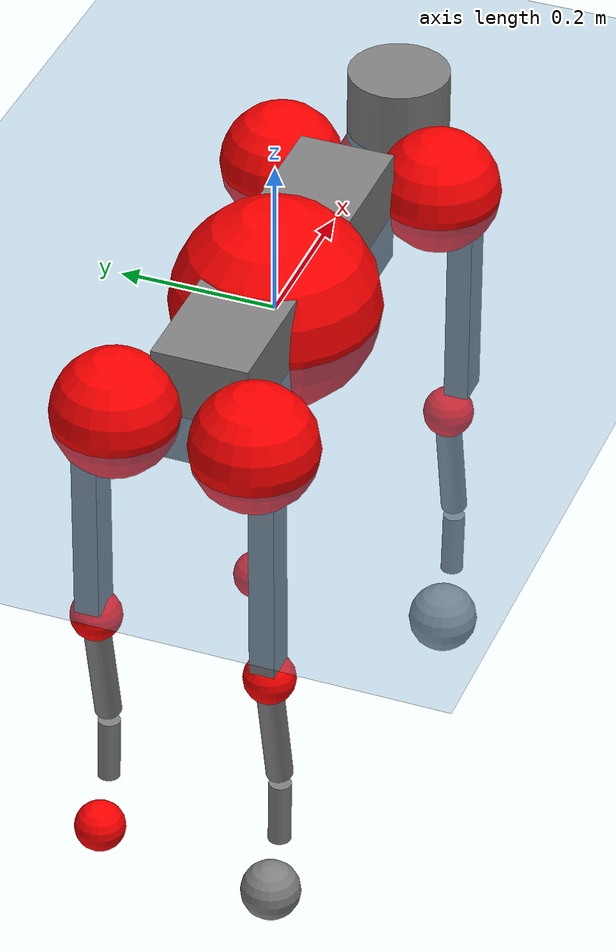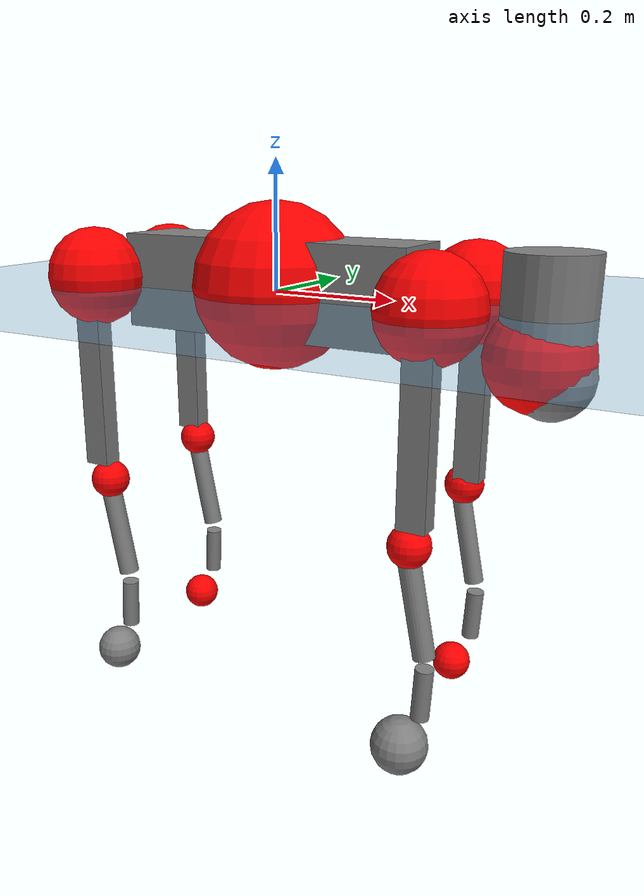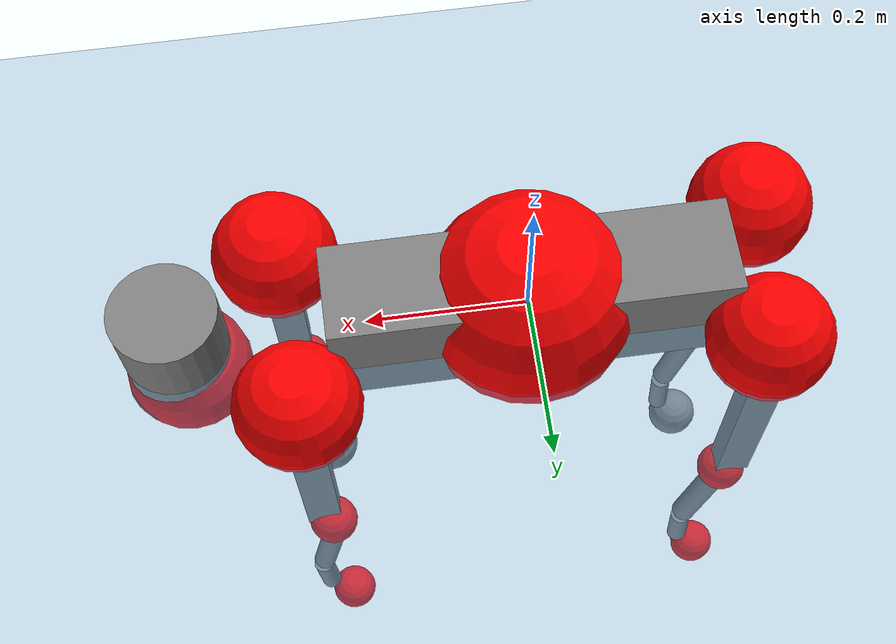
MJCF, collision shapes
<mujoco model="go2">
  <compiler angle="radian" assetdir="assets" balanceinertia="true" inertiafromgeom="false"/>

  <option timestep="0.005" density="1.2" viscosity="2e-05"/>

  <size nkey="1"/>

  <visual>
    <quality shadowsize="8192"/>
    <map shadowclip="0.5"/>
  </visual>

  <default>
    <default class="/">
      <geom contype="0" conaffinity="0" group="1" solref="-1000 -80"/>
      <site size="0.01 0.005 0.005" group="5"/>
      <general forcelimited="true" biastype="affine" gainprm="20" biasprm="0 -20 -0.5"/>
      <default class="go2">
        <joint armature="0.01" damping="0.01" frictionloss="0.2"/>
        <geom condim="1" margin="0.001"/>
        <default class="visual">
          <geom type="mesh" group="2"/>
        </default>
        <default class="collision">
          <geom group="3"/>
          <default class="foot">
            <geom size="0.022 0 0" condim="6" priority="1" friction="0.8 0.02 0.01" solimp="0.015 1 0.022"/>
          </default>
        </default>
        <default class="reward_collision_sphere">
          <geom group="5" rgba="1 0 0 1"/>
        </default>
      </default>
    </default>
  </default>

  <asset>
    <texture type="skybox" colorspace="auto" name="//unnamed_texture_0" builtin="gradient" rgb1="0.95 0.95 0.95" rgb2="0.95 0.95 0.95" width="100" height="600"/>
    <texture type="2d" colorspace="auto" name="texplane" builtin="checker" rgb1="0.345 0.575 0.748" rgb2="0.345 0.575 0.748" markrgb="1 1 1" width="512" height="512"/>
    <material name="MatPlane" class="/" texture="texplane" texuniform="true" texrepeat="2 2" specular="0.9"/>
    <material name="metal" class="/" rgba="0.9 0.95 0.95 1"/>
    <material name="black" class="/" rgba="0 0 0 1"/>
    <material name="white" class="/"/>
    <material name="gray" class="/" rgba="0.671705 0.692426 0.77427 1"/>
    <mesh name="base_0" class="/" file="base_0.obj"/>
    <mesh name="base_1" class="/" file="base_1.obj"/>
    <mesh name="base_2" class="/" file="base_2.obj"/>
    <mesh name="base_3" class="/" file="base_3.obj"/>
    <mesh name="base_4" class="/" file="base_4.obj"/>
    <mesh name="hip_0" class="/" file="hip_0.obj"/>
    <mesh name="hip_1" class="/" file="hip_1.obj"/>
    <mesh name="thigh_0" class="/" file="thigh_0.obj"/>
    <mesh name="thigh_1" class="/" file="thigh_1.obj"/>
    <mesh name="thigh_mirror_0" class="/" file="thigh_mirror_0.obj"/>
    <mesh name="thigh_mirror_1" class="/" file="thigh_mirror_1.obj"/>
    <mesh name="calf_0" class="/" file="calf_0.obj"/>
    <mesh name="calf_1" class="/" file="calf_1.obj"/>
    <mesh name="calf_mirror_0" class="/" file="calf_mirror_0.obj"/>
    <mesh name="calf_mirror_1" class="/" file="calf_mirror_1.obj"/>
    <mesh name="foot" class="/" file="foot.obj"/>
  </asset>

  <worldbody>
    <geom name="floor" class="/" size="100 100 0.125" type="plane" group="0" material="MatPlane"/>
    <light name="toplight_shadow" class="/" pos="0 0 5" dir="0.0990148 0.0990148 -0.990148" type="directional" ambient="0.04 0.04 0.04" diffuse="0.55 0.55 0.55" specular="0.12 0.12 0.12"/>
    <light name="toplight_fill" class="/" pos="0 0 5" dir="0.0990148 0.0990148 -0.990148" type="directional" castshadow="false" ambient="0.04 0.04 0.04" diffuse="0.3 0.3 0.3" specular="0.08 0.08 0.08"/>
    <body name="trunk" childclass="go2" pos="-0.000682776 -0.00118134 0.00899016" quat="1 1.52594e-05 0.000505902 0.000187583">
      <inertial pos="0.0420027 0.0117768 -0.0141189" quat="-0.0118167 0.700974 -0.0122669 0.712983" mass="15.501" diaginertia="0.663874 0.037364 0.196926"/>
      <joint name="//unnamed_joint_0" type="free" armature="0" damping="0" frictionloss="0"/>
      <geom name="//unnamed_geom_1" class="visual" material="black" mesh="base_0"/>
      <geom name="//unnamed_geom_2" class="visual" material="black" mesh="base_1"/>
      <geom name="//unnamed_geom_3" class="visual" material="black" mesh="base_2"/>
      <geom name="//unnamed_geom_4" class="visual" material="white" mesh="base_3"/>
      <geom name="//unnamed_geom_5" class="visual" material="gray" mesh="base_4"/>
      <geom name="trunk_1" class="collision" size="0.246139 0.061175 0.0745877" type="box"/>
      <geom name="trunk_2" class="collision" size="0.0654278 0.058885" pos="0.430647 0 0.0156356" type="cylinder"/>
      <geom name="trunk_3" class="collision" size="0.0615021" pos="0.442735 0 -0.0938135"/>
      <geom name="//unnamed_geom_9" class="reward_collision_sphere" size="0.130856"/>
      <geom name="//unnamed_geom_10" class="reward_collision_sphere" size="0.0785134" pos="0.423092 0 -0.0703601"/>
      <site name="imu" pos="0.0305373 0.00780218 0.00790691" size="0.0130856"/>
      <camera name="track" pos="0 -1.70214 0" quat="0.707107 0.707107 0 0" mode="trackcom"/>
      <camera name="ego_camera" pos="0.471445 0 0.0703601" quat="-0.5 -0.5 0.5 0.5"/>
      <body name="FL_hip" pos="0.290687 0.0445625 -0.000951137" quat="0.999995 -0.00280456 -0.00159516 -0.000742368">
        <inertial pos="-0.0200449 0.00825703 -0.000137926" quat="0.518826 0.501681 0.511037 0.46688" mass="1.74369" diaginertia="0.0080279 0.000261625 0.00422265"/>
        <joint name="FL_hip_joint" pos="0 0 0" axis="0.998827 -0.0403464 -0.0267856" stiffness="0.0189947" range="-1.04329 0.901741" armature="0.00466246" damping="0.0696026" frictionloss="0.291317"/>
        <geom name="//unnamed_geom_11" class="visual" material="metal" mesh="hip_0"/>
        <geom name="//unnamed_geom_12" class="visual" material="gray" mesh="hip_1"/>
        <geom name="//unnamed_geom_13" class="collision" size="0.0601936 0.0261711" pos="0 0.0680854 0" quat="0.707107 0.707107 0 0" type="cylinder"/>
        <geom name="//unnamed_geom_14" class="reward_collision_sphere" size="0.0785134" pos="0 0.0595748 0"/>
        <body name="FL_thigh" pos="-0.000640583 0.081457 -0.00063311" quat="1 2.4787e-05 -2.56194e-05 -6.78379e-05">
          <inertial pos="-0.0112134 -0.0176762 -0.0633129" quat="0.825452 0.10259 -0.0203128 0.5547" mass="2.3183" diaginertia="0.0538794 0.00258835 0.00841175"/>
          <joint name="FL_thigh_joint" pos="0 0 0" axis="-0.059597 0.997727 0.0314452" range="-1.50429 3.44472" armature="0.0118619" damping="0.0277437" frictionloss="0.414183"/>
          <geom name="//unnamed_geom_15" class="visual" material="metal" mesh="thigh_0"/>
          <geom name="//unnamed_geom_16" class="visual" material="gray" mesh="thigh_1"/>
          <geom name="//unnamed_geom_17" class="collision" size="0.139361 0.0160298 0.0222454" pos="0 0 -0.166519" quat="0.707107 0 0.707107 0" type="box"/>
          <body name="FL_calf" pos="-0.0105419 0.0108695 -0.319208" quat="0.999986 -3.50928e-05 0.00135208 -0.00509307">
            <inertial pos="0.0126232 0.000207549 -0.217821" quat="0.702329 -0.00603192 -0.01452 0.711679" mass="0.586998" diaginertia="0.012792 0.000654945 0.000559973"/>
            <joint name="FL_calf_joint" pos="0 0 0" axis="-0.00412875 0.997293 -0.0734095" stiffness="0.000256813" range="-2.55144 -0.942165" armature="0.00900212" damping="0.0611626" frictionloss="0.154555"/>
            <geom name="//unnamed_geom_18" class="visual" material="gray" mesh="calf_0"/>
            <geom name="//unnamed_geom_19" class="visual" material="black" mesh="calf_1"/>
            <geom name="FL_calf0" class="collision" size="0.0157027 0.0785134" pos="0.0120883 0 -0.0938135" quat="0.994493 0 -0.104807 0" type="cylinder"/>
            <geom name="//unnamed_geom_21" class="collision" size="0.0143941 0.0425281" pos="0.0302208 0 -0.231407" quat="0.999688 0 0.0249974 0" type="cylinder"/>
            <geom name="//unnamed_geom_22" class="visual" pos="0 0 -0.333038" quat="1 0 0 0" material="black" mesh="foot"/>
            <geom name="FL_foot" class="foot" size="0.0291689" pos="-0.00302208 0 -0.333038"/>
            <geom name="//unnamed_geom_24" class="reward_collision_sphere" size="0.0327139"/>
            <geom name="//unnamed_geom_25" class="reward_collision_sphere" size="0.0327139" pos="-0.00302208 0 -0.333038"/>
            <site name="FL_foot" class="foot" pos="-0.00302208 0 -0.333038" size="0.0130856"/>
          </body>
        </body>
      </body>
      <body name="FR_hip" pos="0.300598 -0.0416246 0.000459354" quat="1 -3.78953e-05 4.17681e-05 -9.4178e-06">
        <inertial pos="-0.0196698 -0.000554565 -0.000657171" quat="0.495659 0.508891 0.500308 0.49502" mass="1.42231" diaginertia="0.00672257 0.000217054 0.00407747"/>
        <joint name="FR_hip_joint" pos="0 0 0" axis="0.999681 0.0213519 0.0135086" stiffness="0.0226759" range="-0.805403 1.0095" armature="0.0201722" damping="0.000476839" frictionloss="0.415895"/>
        <geom name="//unnamed_geom_26" class="visual" pos="0 -6.20692e-09 -2.66228e-07" quat="4.63268e-05 1 0 0" material="metal" mesh="hip_0"/>
        <geom name="//unnamed_geom_27" class="visual" pos="0 -1.00622e-08 6.58483e-07" quat="4.63268e-05 1 0 0" material="gray" mesh="hip_1"/>
        <geom name="//unnamed_geom_28" class="collision" size="0.0601936 0.0261711" pos="0 -0.0680854 0" quat="0.707107 0.707107 0 0" type="cylinder"/>
        <geom name="//unnamed_geom_29" class="reward_collision_sphere" size="0.0785134" pos="0 -0.0595748 0"/>
        <body name="FR_thigh" pos="0.0058804 -0.0939235 0.00662708" quat="0.999999 0.000285623 -0.000921456 -0.00093048">
          <inertial pos="-0.00517358 0.017209 -0.0505505" quat="0.521339 -0.061713 0.102547 0.844915" mass="3.36322" diaginertia="0.0521768 0.00262999 0.00851254"/>
          <joint name="FR_thigh_joint" pos="0 0 0" axis="0.0364428 -0.998736 -0.0346036" stiffness="0.0261819" range="-3.76348 1.39932" armature="0.0120164" damping="0.0596477" frictionloss="0.067365"/>
          <geom name="//unnamed_geom_30" class="visual" material="metal" mesh="thigh_mirror_0"/>
          <geom name="//unnamed_geom_31" class="visual" material="gray" mesh="thigh_mirror_1"/>
          <geom name="//unnamed_geom_32" class="collision" size="0.139361 0.0160298 0.0222454" pos="0 0 -0.166519" quat="0.707107 0 0.707107 0" type="box"/>
          <body name="FR_calf" pos="-0.0116377 0.0125843 -0.338516" quat="1 -0.000150534 4.19394e-05 0.000175653">
            <inertial pos="0.00824281 0.0005319 -0.233614" quat="0.682879 -0.00353627 -0.0234025 0.730148" mass="0.545833" diaginertia="0.0135491 0.000729122 0.000490117"/>
            <joint name="FR_calf_joint" pos="0 0 0" axis="0.0137843 -0.999895 -0.0043671" range="0.99189 2.55805" armature="0.0158745" damping="0.00493591" frictionloss="0.434551"/>
            <geom name="//unnamed_geom_33" class="visual" material="gray" mesh="calf_mirror_0"/>
            <geom name="//unnamed_geom_34" class="visual" material="black" mesh="calf_mirror_1"/>
            <geom name="FR_calf0" class="collision" size="0.0170112 0.0785134" pos="0.0151104 0 -0.0938135" quat="0.995004 0 -0.0998334 0" type="cylinder"/>
            <geom name="//unnamed_geom_36" class="collision" size="0.0143941 0.0425281" pos="0.0302208 0 -0.231407" quat="0.999688 0 0.0249974 0" type="cylinder"/>
            <geom name="//unnamed_geom_37" class="visual" pos="0 0 -0.333038" quat="1 0 0 0" material="black" mesh="foot"/>
            <geom name="FR_foot" class="foot" size="0.0449143" pos="-0.00302208 0 -0.333038"/>
            <geom name="//unnamed_geom_39" class="reward_collision_sphere" size="0.0327139"/>
            <geom name="//unnamed_geom_40" class="reward_collision_sphere" size="0.0327139" pos="-0.00302208 0 -0.333038"/>
            <site name="FR_foot" class="foot" pos="-0.00302208 0 -0.333038" size="0.0130856"/>
          </body>
        </body>
      </body>
      <body name="RL_hip" pos="-0.278682 0.0337925 0.000853843" quat="0.999998 0.00188612 0.000141637 4.80145e-05">
        <inertial pos="0.00209149 -0.0105158 -6.13564e-05" quat="0.532417 0.491448 0.502587 0.471612" mass="1.52047" diaginertia="0.00839501 0.00025253 0.00585249"/>
        <joint name="RL_hip_joint" pos="0 0 0" axis="-0.999722 -0.0235182 -0.00147242" stiffness="0.0246276" range="-1.14801 1.34407" armature="0.0214961" damping="0.0476513" frictionloss="0.258381"/>
        <geom name="//unnamed_geom_41" class="visual" pos="4.57509e-10 0 8.96823e-08" quat="4.63268e-05 0 1 0" material="metal" mesh="hip_0"/>
        <geom name="//unnamed_geom_42" class="visual" pos="7.41676e-10 0 7.95354e-08" quat="4.63268e-05 0 1 0" material="gray" mesh="hip_1"/>
        <geom name="//unnamed_geom_43" class="collision" size="0.0601936 0.0261711" pos="0 0.0680854 0" quat="0.707107 0.707107 0 0" type="cylinder"/>
        <geom name="//unnamed_geom_44" class="reward_collision_sphere" size="0.0785134" pos="0 0.0595748 0"/>
        <body name="RL_thigh" pos="0.00830592 0.095823 0.00330306" quat="1 -3.1204e-05 0.000130829 8.71092e-06">
          <inertial pos="-0.00518215 -0.0295267 -0.049276" quat="0.829433 0.0858193 -0.022314 0.551523" mass="2.55924" diaginertia="0.0463743 0.00286218 0.00778884"/>
          <joint name="RL_thigh_joint" pos="0 0 0" axis="0.054559 0.99851 0.00114204" range="-0.503701 4.5556" armature="0.0174637" damping="0.0402271" frictionloss="0.199431"/>
          <geom name="//unnamed_geom_45" class="visual" material="metal" mesh="thigh_0"/>
          <geom name="//unnamed_geom_46" class="visual" material="gray" mesh="thigh_1"/>
          <geom name="//unnamed_geom_47" class="collision" size="0.139361 0.0160298 0.0222454" pos="0 0 -0.166519" quat="0.707107 0 0.707107 0" type="box"/>
          <body name="RL_calf" pos="0.00843526 0.00049483 -0.327957" quat="0.999996 -0.000909919 0.00191181 0.00166152">
            <inertial pos="0.00900031 -0.000433382 -0.221814" quat="0.684456 -0.0430721 0.042324 0.726549" mass="0.546197" diaginertia="0.0118829 0.000653011 0.000592005"/>
            <joint name="RL_calf_joint" pos="0 0 0" axis="0.0462112 0.998824 -0.0146844" range="-2.75437 -0.847605" armature="0.0190906" damping="0.0141472" frictionloss="0.150859"/>
            <geom name="//unnamed_geom_48" class="visual" material="gray" mesh="calf_0"/>
            <geom name="//unnamed_geom_49" class="visual" material="black" mesh="calf_1"/>
            <geom name="RL_calf0" class="collision" size="0.0170112 0.0785134" pos="0.0151104 0 -0.0938135" quat="0.995004 0 -0.0998334 0" type="cylinder"/>
            <geom name="//unnamed_geom_51" class="collision" size="0.0143941 0.0425281" pos="0.0302208 0 -0.231407" quat="0.999688 0 0.0249974 0" type="cylinder"/>
            <geom name="//unnamed_geom_52" class="visual" pos="0 0 -0.333038" quat="1 0 0 0" material="black" mesh="foot"/>
            <geom name="RL_foot" class="foot" size="0.0134369" pos="-0.00302208 0 -0.333038"/>
            <geom name="//unnamed_geom_54" class="reward_collision_sphere" size="0.0327139"/>
            <geom name="//unnamed_geom_55" class="reward_collision_sphere" size="0.0327139" pos="-0.00302208 0 -0.333038"/>
            <site name="RL_foot" class="foot" pos="-0.00302208 0 -0.333038" size="0.0130856"/>
          </body>
        </body>
      </body>
      <body name="RR_hip" pos="-0.292042 -0.0273362 0.0061439" quat="0.999987 -0.00202399 0.000819705 0.00451538">
        <inertial pos="0.0205902 -0.00255698 -0.0114618" quat="0.503829 0.481635 0.499918 0.514068" mass="1.65834" diaginertia="0.00765553 0.000285802 0.00566217"/>
        <joint name="RR_hip_joint" pos="0 0 0" axis="-0.999991 -0.00270226 0.00334102" stiffness="0.0328571" range="-0.828352 0.775718" armature="0.0129766" damping="0.0501" frictionloss="0.278057"/>
        <geom name="//unnamed_geom_56" class="visual" pos="-4.80358e-10 -6.20692e-09 3.5591e-07" quat="2.14617e-09 4.63268e-05 4.63268e-05 -1" material="metal" mesh="hip_0"/>
        <geom name="//unnamed_geom_57" class="visual" pos="-6.85163e-10 -1.00622e-08 -5.78947e-07" quat="2.14617e-09 4.63268e-05 4.63268e-05 -1" material="gray" mesh="hip_1"/>
        <geom name="//unnamed_geom_58" class="collision" size="0.0601936 0.0261711" pos="0 -0.0680854 0" quat="0.707107 0.707107 0 0" type="cylinder"/>
        <geom name="//unnamed_geom_59" class="reward_collision_sphere" size="0.0785134" pos="0 -0.0595748 0"/>
        <body name="RR_thigh" pos="2.2289e-05 -0.0748276 -0.0123654" quat="1 -4.09883e-05 -0.000255432 0.000156846">
          <inertial pos="-0.0148415 0.021859 -0.0533696" quat="0.55306 -0.0221294 0.0857924 0.828417" mass="3.55505" diaginertia="0.0630226 0.00309296 0.00934738"/>
          <joint name="RR_thigh_joint" pos="0 0 0" axis="-0.052653 -0.99859 -0.00669217" stiffness="0.0032545" range="-4.54042 0.554982" armature="0.016656" damping="0.0304095" frictionloss="0.278103"/>
          <geom name="//unnamed_geom_60" class="visual" material="metal" mesh="thigh_mirror_0"/>
          <geom name="//unnamed_geom_61" class="visual" material="gray" mesh="thigh_mirror_1"/>
          <geom name="//unnamed_geom_62" class="collision" size="0.139361 0.0160298 0.0222454" pos="0 0 -0.166519" quat="0.707107 0 0.707107 0" type="box"/>
          <body name="RR_calf" pos="0.0120421 0.00285101 -0.335009" quat="0.999995 -0.00197586 0.00107667 -0.00233926">
            <inertial pos="0.0147949 -0.000269643 -0.221297" quat="0.71525 0.046723 -0.00688385 0.697271" mass="0.529596" diaginertia="0.0127403 0.000562433 0.000495586"/>
            <joint name="RR_calf_joint" pos="0 0 0" axis="-0.0147769 -0.999872 0.00607045" range="0.888623 2.80744" armature="0.0218307" damping="0" frictionloss="0.265538"/>
            <geom name="//unnamed_geom_63" class="visual" material="gray" mesh="calf_mirror_0"/>
            <geom name="//unnamed_geom_64" class="visual" material="black" mesh="calf_mirror_1"/>
            <geom name="RR_calf0" class="collision" size="0.0170112 0.0785134" pos="0.0151104 0 -0.0938135" quat="0.995004 0 -0.0998334 0" type="cylinder"/>
            <geom name="//unnamed_geom_66" class="collision" size="0.0143941 0.0425281" pos="0.0302208 0 -0.231407" quat="0.999688 0 0.0249974 0" type="cylinder"/>
            <geom name="//unnamed_geom_67" class="visual" pos="0 0 -0.333038" quat="1 0 0 0" material="black" mesh="foot"/>
            <geom name="RR_foot" class="foot" size="0.0380298" pos="-0.00302208 0 -0.333038"/>
            <geom name="//unnamed_geom_69" class="reward_collision_sphere" size="0.0327139"/>
            <geom name="//unnamed_geom_70" class="reward_collision_sphere" size="0.0327139" pos="-0.00302208 0 -0.333038"/>
            <site name="RR_foot" class="foot" pos="-0.00302208 0 -0.333038" size="0.0130856"/>
          </body>
        </body>
      </body>
    </body>
  </worldbody>

  <contact>
    <pair class="/" geom1="floor" geom2="FL_foot" name="//unnamed_contact_0"/>
    <pair class="/" geom1="floor" geom2="FR_foot" name="//unnamed_contact_1"/>
    <pair class="/" geom1="floor" geom2="RL_foot" name="//unnamed_contact_2"/>
    <pair class="/" geom1="floor" geom2="RR_foot" name="//unnamed_contact_3"/>
  </contact>

  <actuator>
    <general name="FL_hip" class="/" joint="FL_hip_joint" forcerange="-33.3156 33.3156" gainprm="24.4099" biasprm="0 -24.4099 -0.702746"/>
    <general name="FL_thigh" class="/" joint="FL_thigh_joint" forcerange="-39.6941 39.6941" gainprm="24.4099" biasprm="0 -24.4099 -0.702746"/>
    <general name="FL_calf" class="/" joint="FL_calf_joint" forcerange="-66.9729 66.9729" gainprm="24.4099" biasprm="0 -24.4099 -0.702746"/>
    <general name="FR_hip" class="/" joint="FR_hip_joint" forcerange="-40.3675 40.3675" gainprm="24.4099" biasprm="0 -24.4099 -0.702746"/>
    <general name="FR_thigh" class="/" joint="FR_thigh_joint" forcerange="-23.8975 23.8975" gainprm="24.4099" biasprm="0 -24.4099 -0.702746"/>
    <general name="FR_calf" class="/" joint="FR_calf_joint" forcerange="-84.9553 84.9553" gainprm="24.4099" biasprm="0 -24.4099 -0.702746"/>
    <general name="RL_hip" class="/" joint="RL_hip_joint" forcerange="-31.3158 31.3158" gainprm="24.4099" biasprm="0 -24.4099 -0.702746"/>
    <general name="RL_thigh" class="/" joint="RL_thigh_joint" forcerange="-44.5763 44.5763" gainprm="24.4099" biasprm="0 -24.4099 -0.702746"/>
    <general name="RL_calf" class="/" joint="RL_calf_joint" forcerange="-66.32 66.32" gainprm="24.4099" biasprm="0 -24.4099 -0.702746"/>
    <general name="RR_hip" class="/" joint="RR_hip_joint" forcerange="-36.1932 36.1932" gainprm="24.4099" biasprm="0 -24.4099 -0.702746"/>
    <general name="RR_thigh" class="/" joint="RR_thigh_joint" forcerange="-46.2158 46.2158" gainprm="24.4099" biasprm="0 -24.4099 -0.702746"/>
    <general name="RR_calf" class="/" joint="RR_calf_joint" forcerange="-35.3394 35.3394" gainprm="24.4099" biasprm="0 -24.4099 -0.702746"/>
  </actuator>

  <sensor>
    <gyro site="imu" name="imu_angular_velocity"/>
    <velocimeter site="imu" name="imu_linear_velocity"/>
    <framelinvel objtype="site" objname="FL_foot" name="FL_foot_global_linear_velocity"/>
    <framelinvel objtype="site" objname="FR_foot" name="FR_foot_global_linear_velocity"/>
    <framelinvel objtype="site" objname="RL_foot" name="RL_foot_global_linear_velocity"/>
    <framelinvel objtype="site" objname="RR_foot" name="RR_foot_global_linear_velocity"/>
  </sensor>

  <keyframe>
    <key name="home" qpos="0 0 0.325 1 0 0 0 0.1 0.8 -1.5 -0.1 -0.8 1.5 -0.1 0.8 -1.5 0.1 -0.8 1.5"/>
  </keyframe>
</mujoco>
